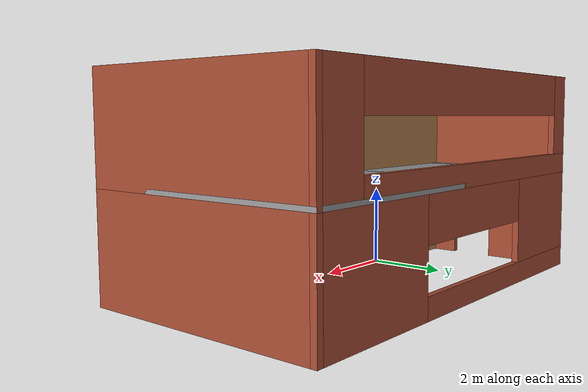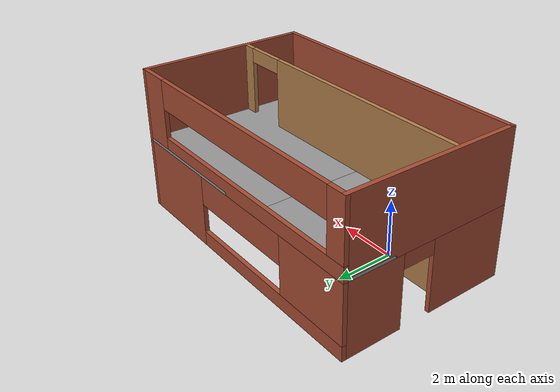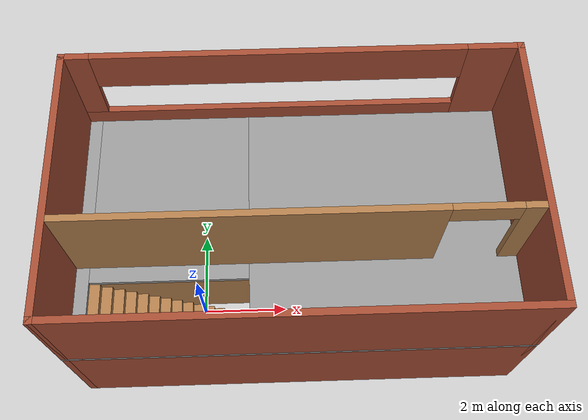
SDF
<?xml version='1.0'?>
<sdf version='1.6'>
  <model name='2storytexure'>
    <pose frame=''>2.285 1.175 0 0 -0 0</pose>
    <link name='Floor_0'>
      <pose frame=''>0 0 2.5 0 -0 0</pose>
      <visual name='Floor_0_Visual_0'>
        <pose frame=''>-4.7806 0 0.05 0 -0 0</pose>
        <geometry>
          <box>
            <size>0.438792 6 0.1</size>
          </box>
        </geometry>
        <material>
          <script>
            <uri>file://media/materials/scripts/gazebo.material</uri>
            <name>Gazebo/Grey</name>
          </script>
          <ambient>1 1 1 1</ambient>
        </material>
        <meta>
          <layer>1</layer>
        </meta>
      </visual>
      <collision name='Floor_0_Collision_0'>
        <geometry>
          <box>
            <size>0.438792 6 0.1</size>
          </box>
        </geometry>
        <pose frame=''>-4.7806 0 0.05 0 -0 0</pose>
      </collision>
      <visual name='Floor_0_Visual_1'>
        <pose frame=''>0.219396 -2.6591 0.05 0 -0 0</pose>
        <geometry>
          <box>
            <size>9.56121 0.681807 0.1</size>
          </box>
        </geometry>
        <material>
          <script>
            <uri>file://media/materials/scripts/gazebo.material</uri>
            <name>Gazebo/Grey</name>
          </script>
          <ambient>1 1 1 1</ambient>
        </material>
        <meta>
          <layer>1</layer>
        </meta>
      </visual>
      <collision name='Floor_0_Collision_1'>
        <geometry>
          <box>
            <size>9.56121 0.681807 0.1</size>
          </box>
        </geometry>
        <pose frame=''>0.219396 -2.6591 0.05 0 -0 0</pose>
      </collision>
      <visual name='Floor_0_Visual_2'>
        <pose frame=''>1.9694 0.340904 0.05 0 -0 0</pose>
        <geometry>
          <box>
            <size>6.06121 5.31819 0.1</size>
          </box>
        </geometry>
        <material>
          <script>
            <uri>file://media/materials/scripts/gazebo.material</uri>
            <name>Gazebo/Grey</name>
          </script>
          <ambient>1 1 1 1</ambient>
        </material>
        <meta>
          <layer>1</layer>
        </meta>
      </visual>
      <collision name='Floor_0_Collision_2'>
        <geometry>
          <box>
            <size>6.06121 5.31819 0.1</size>
          </box>
        </geometry>
        <pose frame=''>1.9694 0.340904 0.05 0 -0 0</pose>
      </collision>
      <visual name='Floor_0_Visual_3'>
        <pose frame=''>-2.81121 0.840904 0.05 0 -0 0</pose>
        <geometry>
          <box>
            <size>3.5 4.31819 0.1</size>
          </box>
        </geometry>
        <material>
          <script>
            <uri>file://media/materials/scripts/gazebo.material</uri>
            <name>Gazebo/Grey</name>
          </script>
          <ambient>1 1 1 1</ambient>
        </material>
        <meta>
          <layer>1</layer>
        </meta>
      </visual>
      <collision name='Floor_0_Collision_3'>
        <geometry>
          <box>
            <size>3.5 4.31819 0.1</size>
          </box>
        </geometry>
        <pose frame=''>-2.81121 0.840904 0.05 0 -0 0</pose>
      </collision>
    </link>
    <link name='Stairs_0'>
      <visual name='Stairs_0_Visual_0'>
        <pose frame=''>-1.17787 -1.81819 0.083333 0 -0 -1.5708</pose>
        <geometry>
          <box>
            <size>1 0.233333 0.166667</size>
          </box>
        </geometry>
        <material>
          <script>
            <uri>file://media/materials/scripts/gazebo.material</uri>
            <name>Gazebo/Wood</name>
          </script>
          <ambient>1 1 1 1</ambient>
        </material>
        <meta>
          <layer>0</layer>
        </meta>
      </visual>
      <collision name='Stairs_0_Collision_0'>
        <geometry>
          <box>
            <size>1 0.233333 0.166667</size>
          </box>
        </geometry>
        <pose frame=''>-1.17787 -1.81819 0.083333 0 -0 -1.5708</pose>
      </collision>
      <visual name='Stairs_0_Visual_1'>
        <pose frame=''>-1.41121 -1.81819 0.25 0 -0 -1.5708</pose>
        <geometry>
          <box>
            <size>1 0.233333 0.166667</size>
          </box>
        </geometry>
        <material>
          <script>
            <uri>file://media/materials/scripts/gazebo.material</uri>
            <name>Gazebo/Wood</name>
          </script>
          <ambient>1 1 1 1</ambient>
        </material>
        <meta>
          <layer>0</layer>
        </meta>
      </visual>
      <collision name='Stairs_0_Collision_1'>
        <geometry>
          <box>
            <size>1 0.233333 0.166667</size>
          </box>
        </geometry>
        <pose frame=''>-1.41121 -1.81819 0.25 0 -0 -1.5708</pose>
      </collision>
      <visual name='Stairs_0_Visual_2'>
        <pose frame=''>-1.64454 -1.81819 0.416667 0 -0 -1.5708</pose>
        <geometry>
          <box>
            <size>1 0.233333 0.166667</size>
          </box>
        </geometry>
        <material>
          <script>
            <uri>file://media/materials/scripts/gazebo.material</uri>
            <name>Gazebo/Wood</name>
          </script>
          <ambient>1 1 1 1</ambient>
        </material>
        <meta>
          <layer>0</layer>
        </meta>
      </visual>
      <collision name='Stairs_0_Collision_2'>
        <geometry>
          <box>
            <size>1 0.233333 0.166667</size>
          </box>
        </geometry>
        <pose frame=''>-1.64454 -1.81819 0.416667 0 -0 -1.5708</pose>
      </collision>
      <visual name='Stairs_0_Visual_3'>
        <pose frame=''>-1.87787 -1.81819 0.583333 0 -0 -1.5708</pose>
        <geometry>
          <box>
            <size>1 0.233333 0.166667</size>
          </box>
        </geometry>
        <material>
          <script>
            <uri>file://media/materials/scripts/gazebo.material</uri>
            <name>Gazebo/Wood</name>
          </script>
          <ambient>1 1 1 1</ambient>
        </material>
        <meta>
          <layer>0</layer>
        </meta>
      </visual>
      <collision name='Stairs_0_Collision_3'>
        <geometry>
          <box>
            <size>1 0.233333 0.166667</size>
          </box>
        </geometry>
        <pose frame=''>-1.87787 -1.81819 0.583333 0 -0 -1.5708</pose>
      </collision>
      <visual name='Stairs_0_Visual_4'>
        <pose frame=''>-2.11121 -1.81819 0.75 0 -0 -1.5708</pose>
        <geometry>
          <box>
            <size>1 0.233333 0.166667</size>
          </box>
        </geometry>
        <material>
          <script>
            <uri>file://media/materials/scripts/gazebo.material</uri>
            <name>Gazebo/Wood</name>
          </script>
          <ambient>1 1 1 1</ambient>
        </material>
        <meta>
          <layer>0</layer>
        </meta>
      </visual>
      <collision name='Stairs_0_Collision_4'>
        <geometry>
          <box>
            <size>1 0.233333 0.166667</size>
          </box>
        </geometry>
        <pose frame=''>-2.11121 -1.81819 0.75 0 -0 -1.5708</pose>
      </collision>
      <visual name='Stairs_0_Visual_5'>
        <pose frame=''>-2.34454 -1.81819 0.916667 0 -0 -1.5708</pose>
        <geometry>
          <box>
            <size>1 0.233333 0.166667</size>
          </box>
        </geometry>
        <material>
          <script>
            <uri>file://media/materials/scripts/gazebo.material</uri>
            <name>Gazebo/Wood</name>
          </script>
          <ambient>1 1 1 1</ambient>
        </material>
        <meta>
          <layer>0</layer>
        </meta>
      </visual>
      <collision name='Stairs_0_Collision_5'>
        <geometry>
          <box>
            <size>1 0.233333 0.166667</size>
          </box>
        </geometry>
        <pose frame=''>-2.34454 -1.81819 0.916667 0 -0 -1.5708</pose>
      </collision>
      <visual name='Stairs_0_Visual_6'>
        <pose frame=''>-2.57787 -1.81819 1.08333 0 -0 -1.5708</pose>
        <geometry>
          <box>
            <size>1 0.233333 0.166667</size>
          </box>
        </geometry>
        <material>
          <script>
            <uri>file://media/materials/scripts/gazebo.material</uri>
            <name>Gazebo/Wood</name>
          </script>
          <ambient>1 1 1 1</ambient>
        </material>
        <meta>
          <layer>0</layer>
        </meta>
      </visual>
      <collision name='Stairs_0_Collision_6'>
        <geometry>
          <box>
            <size>1 0.233333 0.166667</size>
          </box>
        </geometry>
        <pose frame=''>-2.57787 -1.81819 1.08333 0 -0 -1.5708</pose>
      </collision>
      <visual name='Stairs_0_Visual_7'>
        <pose frame=''>-2.81121 -1.81819 1.25 0 -0 -1.5708</pose>
        <geometry>
          <box>
            <size>1 0.233333 0.166667</size>
          </box>
        </geometry>
        <material>
          <script>
            <uri>file://media/materials/scripts/gazebo.material</uri>
            <name>Gazebo/Wood</name>
          </script>
          <ambient>1 1 1 1</ambient>
        </material>
        <meta>
          <layer>0</layer>
        </meta>
      </visual>
      <collision name='Stairs_0_Collision_7'>
        <geometry>
          <box>
            <size>1 0.233333 0.166667</size>
          </box>
        </geometry>
        <pose frame=''>-2.81121 -1.81819 1.25 0 -0 -1.5708</pose>
      </collision>
      <visual name='Stairs_0_Visual_8'>
        <pose frame=''>-3.04454 -1.81819 1.41667 0 -0 -1.5708</pose>
        <geometry>
          <box>
            <size>1 0.233333 0.166667</size>
          </box>
        </geometry>
        <material>
          <script>
            <uri>file://media/materials/scripts/gazebo.material</uri>
            <name>Gazebo/Wood</name>
          </script>
          <ambient>1 1 1 1</ambient>
        </material>
        <meta>
          <layer>0</layer>
        </meta>
      </visual>
      <collision name='Stairs_0_Collision_8'>
        <geometry>
          <box>
            <size>1 0.233333 0.166667</size>
          </box>
        </geometry>
        <pose frame=''>-3.04454 -1.81819 1.41667 0 -0 -1.5708</pose>
      </collision>
      <visual name='Stairs_0_Visual_9'>
        <pose frame=''>-3.27787 -1.81819 1.58333 0 -0 -1.5708</pose>
        <geometry>
          <box>
            <size>1 0.233333 0.166667</size>
          </box>
        </geometry>
        <material>
          <script>
            <uri>file://media/materials/scripts/gazebo.material</uri>
            <name>Gazebo/Wood</name>
          </script>
          <ambient>1 1 1 1</ambient>
        </material>
        <meta>
          <layer>0</layer>
        </meta>
      </visual>
      <collision name='Stairs_0_Collision_9'>
        <geometry>
          <box>
            <size>1 0.233333 0.166667</size>
          </box>
        </geometry>
        <pose frame=''>-3.27787 -1.81819 1.58333 0 -0 -1.5708</pose>
      </collision>
      <visual name='Stairs_0_Visual_10'>
        <pose frame=''>-3.51121 -1.81819 1.75 0 -0 -1.5708</pose>
        <geometry>
          <box>
            <size>1 0.233333 0.166667</size>
          </box>
        </geometry>
        <material>
          <script>
            <uri>file://media/materials/scripts/gazebo.material</uri>
            <name>Gazebo/Wood</name>
          </script>
          <ambient>1 1 1 1</ambient>
        </material>
        <meta>
          <layer>0</layer>
        </meta>
      </visual>
      <collision name='Stairs_0_Collision_10'>
        <geometry>
          <box>
            <size>1 0.233333 0.166667</size>
          </box>
        </geometry>
        <pose frame=''>-3.51121 -1.81819 1.75 0 -0 -1.5708</pose>
      </collision>
      <visual name='Stairs_0_Visual_11'>
        <pose frame=''>-3.74454 -1.81819 1.91667 0 -0 -1.5708</pose>
        <geometry>
          <box>
            <size>1 0.233333 0.166667</size>
          </box>
        </geometry>
        <material>
          <script>
            <uri>file://media/materials/scripts/gazebo.material</uri>
            <name>Gazebo/Wood</name>
          </script>
          <ambient>1 1 1 1</ambient>
        </material>
        <meta>
          <layer>0</layer>
        </meta>
      </visual>
      <collision name='Stairs_0_Collision_11'>
        <geometry>
          <box>
            <size>1 0.233333 0.166667</size>
          </box>
        </geometry>
        <pose frame=''>-3.74454 -1.81819 1.91667 0 -0 -1.5708</pose>
      </collision>
      <visual name='Stairs_0_Visual_12'>
        <pose frame=''>-3.97787 -1.81819 2.08333 0 -0 -1.5708</pose>
        <geometry>
          <box>
            <size>1 0.233333 0.166667</size>
          </box>
        </geometry>
        <material>
          <script>
            <uri>file://media/materials/scripts/gazebo.material</uri>
            <name>Gazebo/Wood</name>
          </script>
          <ambient>1 1 1 1</ambient>
        </material>
        <meta>
          <layer>0</layer>
        </meta>
      </visual>
      <collision name='Stairs_0_Collision_12'>
        <geometry>
          <box>
            <size>1 0.233333 0.166667</size>
          </box>
        </geometry>
        <pose frame=''>-3.97787 -1.81819 2.08333 0 -0 -1.5708</pose>
      </collision>
      <visual name='Stairs_0_Visual_13'>
        <pose frame=''>-4.21121 -1.81819 2.25 0 -0 -1.5708</pose>
        <geometry>
          <box>
            <size>1 0.233333 0.166667</size>
          </box>
        </geometry>
        <material>
          <script>
            <uri>file://media/materials/scripts/gazebo.material</uri>
            <name>Gazebo/Wood</name>
          </script>
          <ambient>1 1 1 1</ambient>
        </material>
        <meta>
          <layer>0</layer>
        </meta>
      </visual>
      <collision name='Stairs_0_Collision_13'>
        <geometry>
          <box>
            <size>1 0.233333 0.166667</size>
          </box>
        </geometry>
        <pose frame=''>-4.21121 -1.81819 2.25 0 -0 -1.5708</pose>
      </collision>
      <visual name='Stairs_0_Visual_14'>
        <pose frame=''>-4.44454 -1.81819 2.41667 0 -0 -1.5708</pose>
        <geometry>
          <box>
            <size>1 0.233333 0.166667</size>
          </box>
        </geometry>
        <material>
          <script>
            <uri>file://media/materials/scripts/gazebo.material</uri>
            <name>Gazebo/Wood</name>
          </script>
          <ambient>1 1 1 1</ambient>
        </material>
        <meta>
          <layer>0</layer>
        </meta>
      </visual>
      <collision name='Stairs_0_Collision_14'>
        <geometry>
          <box>
            <size>1 0.233333 0.166667</size>
          </box>
        </geometry>
        <pose frame=''>-4.44454 -1.81819 2.41667 0 -0 -1.5708</pose>
      </collision>
    </link>
    <link name='Wall_0'>
      <collision name='Wall_0_Collision'>
        <geometry>
          <box>
            <size>10 0.15 2.5</size>
          </box>
        </geometry>
        <pose frame=''>0 0 1.25 0 -0 0</pose>
      </collision>
      <visual name='Wall_0_Visual'>
        <pose frame=''>0 0 1.25 0 -0 0</pose>
        <geometry>
          <box>
            <size>10 0.15 2.5</size>
          </box>
        </geometry>
        <material>
          <script>
            <uri>file://media/materials/scripts/gazebo.material</uri>
            <name>Gazebo/Bricks</name>
          </script>
          <ambient>1 1 1 1</ambient>
        </material>
        <meta>
          <layer>0</layer>
        </meta>
      </visual>
      <pose frame=''>0 -2.925 0 0 -0 0</pose>
    </link>
    <link name='Wall_1'>
      <collision name='Wall_1_Collision'>
        <geometry>
          <box>
            <size>6 0.15 2.5</size>
          </box>
        </geometry>
        <pose frame=''>0 0 1.25 0 -0 0</pose>
      </collision>
      <visual name='Wall_1_Visual'>
        <pose frame=''>0 0 1.25 0 -0 0</pose>
        <geometry>
          <box>
            <size>6 0.15 2.5</size>
          </box>
        </geometry>
        <material>
          <script>
            <uri>file://media/materials/scripts/gazebo.material</uri>
            <name>Gazebo/Bricks</name>
          </script>
          <ambient>1 1 1 1</ambient>
        </material>
        <meta>
          <layer>0</layer>
        </meta>
      </visual>
      <pose frame=''>4.925 0 0 0 -0 1.5708</pose>
    </link>
    <link name='Wall_10'>
      <pose frame=''>0 2.925 2.5 0 -0 3.14159</pose>
      <visual name='Wall_10_Visual_0'>
        <pose frame=''>-4.39109 0 1.25 0 -0 0</pose>
        <geometry>
          <box>
            <size>1.21783 0.15 2.5</size>
          </box>
        </geometry>
        <material>
          <script>
            <uri>file://media/materials/scripts/gazebo.material</uri>
            <name>Gazebo/Bricks</name>
          </script>
          <ambient>1 1 1 1</ambient>
        </material>
        <meta>
          <layer>1</layer>
        </meta>
      </visual>
      <collision name='Wall_10_Collision_0'>
        <geometry>
          <box>
            <size>1.21783 0.15 2.5</size>
          </box>
        </geometry>
        <pose frame=''>-4.39109 0 1.25 0 -0 0</pose>
      </collision>
      <visual name='Wall_10_Visual_1'>
        <pose frame=''>0.608915 0 0.25 0 -0 0</pose>
        <geometry>
          <box>
            <size>8.78217 0.15 0.5</size>
          </box>
        </geometry>
        <material>
          <script>
            <uri>file://media/materials/scripts/gazebo.material</uri>
            <name>Gazebo/Bricks</name>
          </script>
          <ambient>1 1 1 1</ambient>
        </material>
        <meta>
          <layer>1</layer>
        </meta>
      </visual>
      <collision name='Wall_10_Collision_1'>
        <geometry>
          <box>
            <size>8.78217 0.15 0.5</size>
          </box>
        </geometry>
        <pose frame=''>0.608915 0 0.25 0 -0 0</pose>
      </collision>
      <visual name='Wall_10_Visual_2'>
        <pose frame=''>4.66641 0 1.5 0 -0 0</pose>
        <geometry>
          <box>
            <size>0.66717 0.15 2</size>
          </box>
        </geometry>
        <material>
          <script>
            <uri>file://media/materials/scripts/gazebo.material</uri>
            <name>Gazebo/Bricks</name>
          </script>
          <ambient>1 1 1 1</ambient>
        </material>
        <meta>
          <layer>1</layer>
        </meta>
      </visual>
      <collision name='Wall_10_Collision_2'>
        <geometry>
          <box>
            <size>0.66717 0.15 2</size>
          </box>
        </geometry>
        <pose frame=''>4.66641 0 1.5 0 -0 0</pose>
      </collision>
      <visual name='Wall_10_Visual_3'>
        <pose frame=''>0.27533 0 2 0 -0 0</pose>
        <geometry>
          <box>
            <size>8.115 0.15 1</size>
          </box>
        </geometry>
        <material>
          <script>
            <uri>file://media/materials/scripts/gazebo.material</uri>
            <name>Gazebo/Bricks</name>
          </script>
          <ambient>1 1 1 1</ambient>
        </material>
        <meta>
          <layer>1</layer>
        </meta>
      </visual>
      <collision name='Wall_10_Collision_3'>
        <geometry>
          <box>
            <size>8.115 0.15 1</size>
          </box>
        </geometry>
        <pose frame=''>0.27533 0 2 0 -0 0</pose>
      </collision>
    </link>
    <link name='Wall_11'>
      <collision name='Wall_11_Collision'>
        <geometry>
          <box>
            <size>6 0.15 2.5</size>
          </box>
        </geometry>
        <pose frame=''>0 0 1.25 0 -0 0</pose>
      </collision>
      <visual name='Wall_11_Visual'>
        <pose frame=''>0 0 1.25 0 -0 0</pose>
        <geometry>
          <box>
            <size>6 0.15 2.5</size>
          </box>
        </geometry>
        <material>
          <script>
            <uri>file://media/materials/scripts/gazebo.material</uri>
            <name>Gazebo/Bricks</name>
          </script>
          <ambient>1 1 1 1</ambient>
        </material>
        <meta>
          <layer>1</layer>
        </meta>
      </visual>
      <pose frame=''>-4.925 0 2.5 0 -0 -1.5708</pose>
    </link>
    <link name='Wall_12'>
      <pose frame=''>0.008566 -0.889608 2.5 0 -0 0</pose>
      <visual name='Wall_12_Visual_0'>
        <pose frame=''>-0.941376 0 1.25 0 -0 0</pose>
        <geometry>
          <box>
            <size>7.86725 0.15 2.5</size>
          </box>
        </geometry>
        <material>
          <script>
            <uri>file://media/materials/scripts/gazebo.material</uri>
            <name>Gazebo/Wood</name>
          </script>
          <ambient>1 1 1 1</ambient>
        </material>
        <meta>
          <layer>1</layer>
        </meta>
      </visual>
      <collision name='Wall_12_Collision_0'>
        <geometry>
          <box>
            <size>7.86725 0.15 2.5</size>
          </box>
        </geometry>
        <pose frame=''>-0.941376 0 1.25 0 -0 0</pose>
      </collision>
      <visual name='Wall_12_Visual_1'>
        <pose frame=''>4.64217 0 1.25 0 -0 0</pose>
        <geometry>
          <box>
            <size>0.465655 0.15 2.5</size>
          </box>
        </geometry>
        <material>
          <script>
            <uri>file://media/materials/scripts/gazebo.material</uri>
            <name>Gazebo/Wood</name>
          </script>
          <ambient>1 1 1 1</ambient>
        </material>
        <meta>
          <layer>1</layer>
        </meta>
      </visual>
      <collision name='Wall_12_Collision_1'>
        <geometry>
          <box>
            <size>0.465655 0.15 2.5</size>
          </box>
        </geometry>
        <pose frame=''>4.64217 0 1.25 0 -0 0</pose>
      </collision>
      <visual name='Wall_12_Visual_2'>
        <pose frame=''>3.7008 0 2.25 0 -0 0</pose>
        <geometry>
          <box>
            <size>1.4171 0.15 0.5</size>
          </box>
        </geometry>
        <material>
          <script>
            <uri>file://media/materials/scripts/gazebo.material</uri>
            <name>Gazebo/Wood</name>
          </script>
          <ambient>1 1 1 1</ambient>
        </material>
        <meta>
          <layer>1</layer>
        </meta>
      </visual>
      <collision name='Wall_12_Collision_2'>
        <geometry>
          <box>
            <size>1.4171 0.15 0.5</size>
          </box>
        </geometry>
        <pose frame=''>3.7008 0 2.25 0 -0 0</pose>
      </collision>
    </link>
    <link name='Wall_2'>
      <pose frame=''>0 2.925 0 0 -0 3.14159</pose>
      <visual name='Wall_2_Visual_0'>
        <pose frame=''>-3.365 0 1.25 0 -0 0</pose>
        <geometry>
          <box>
            <size>3.27 0.15 2.5</size>
          </box>
        </geometry>
        <material>
          <script>
            <uri>file://media/materials/scripts/gazebo.material</uri>
            <name>Gazebo/Bricks</name>
          </script>
          <ambient>1 1 1 1</ambient>
        </material>
        <meta>
          <layer>0</layer>
        </meta>
      </visual>
      <collision name='Wall_2_Collision_0'>
        <geometry>
          <box>
            <size>3.27 0.15 2.5</size>
          </box>
        </geometry>
        <pose frame=''>-3.365 0 1.25 0 -0 0</pose>
      </collision>
      <visual name='Wall_2_Visual_1'>
        <pose frame=''>1.635 0 0.25 0 -0 0</pose>
        <geometry>
          <box>
            <size>6.73 0.15 0.5</size>
          </box>
        </geometry>
        <material>
          <script>
            <uri>file://media/materials/scripts/gazebo.material</uri>
            <name>Gazebo/Bricks</name>
          </script>
          <ambient>1 1 1 1</ambient>
        </material>
        <meta>
          <layer>0</layer>
        </meta>
      </visual>
      <collision name='Wall_2_Collision_1'>
        <geometry>
          <box>
            <size>6.73 0.15 0.5</size>
          </box>
        </geometry>
        <pose frame=''>1.635 0 0.25 0 -0 0</pose>
      </collision>
      <visual name='Wall_2_Visual_2'>
        <pose frame=''>3.65 0 1.5 0 -0 0</pose>
        <geometry>
          <box>
            <size>2.7 0.15 2</size>
          </box>
        </geometry>
        <material>
          <script>
            <uri>file://media/materials/scripts/gazebo.material</uri>
            <name>Gazebo/Bricks</name>
          </script>
          <ambient>1 1 1 1</ambient>
        </material>
        <meta>
          <layer>0</layer>
        </meta>
      </visual>
      <collision name='Wall_2_Collision_2'>
        <geometry>
          <box>
            <size>2.7 0.15 2</size>
          </box>
        </geometry>
        <pose frame=''>3.65 0 1.5 0 -0 0</pose>
      </collision>
      <visual name='Wall_2_Visual_3'>
        <pose frame=''>0.285 0 2 0 -0 0</pose>
        <geometry>
          <box>
            <size>4.03 0.15 1</size>
          </box>
        </geometry>
        <material>
          <script>
            <uri>file://media/materials/scripts/gazebo.material</uri>
            <name>Gazebo/Bricks</name>
          </script>
          <ambient>1 1 1 1</ambient>
        </material>
        <meta>
          <layer>0</layer>
        </meta>
      </visual>
      <collision name='Wall_2_Collision_3'>
        <geometry>
          <box>
            <size>4.03 0.15 1</size>
          </box>
        </geometry>
        <pose frame=''>0.285 0 2 0 -0 0</pose>
      </collision>
    </link>
    <link name='Wall_3'>
      <pose frame=''>-4.925 0 0 0 -0 -1.5708</pose>
      <visual name='Wall_3_Visual_0'>
        <pose frame=''>-1.96738 0 1.25 0 -0 0</pose>
        <geometry>
          <box>
            <size>2.06523 0.15 2.5</size>
          </box>
        </geometry>
        <material>
          <script>
            <uri>file://media/materials/scripts/gazebo.material</uri>
            <name>Gazebo/Bricks</name>
          </script>
          <ambient>1 1 1 1</ambient>
        </material>
        <meta>
          <layer>0</layer>
        </meta>
      </visual>
      <collision name='Wall_3_Collision_0'>
        <geometry>
          <box>
            <size>2.06523 0.15 2.5</size>
          </box>
        </geometry>
        <pose frame=''>-1.96738 0 1.25 0 -0 0</pose>
      </collision>
      <visual name='Wall_3_Visual_1'>
        <pose frame=''>1.58762 0 1.25 0 -0 0</pose>
        <geometry>
          <box>
            <size>2.82477 0.15 2.5</size>
          </box>
        </geometry>
        <material>
          <script>
            <uri>file://media/materials/scripts/gazebo.material</uri>
            <name>Gazebo/Bricks</name>
          </script>
          <ambient>1 1 1 1</ambient>
        </material>
        <meta>
          <layer>0</layer>
        </meta>
      </visual>
      <collision name='Wall_3_Collision_1'>
        <geometry>
          <box>
            <size>2.82477 0.15 2.5</size>
          </box>
        </geometry>
        <pose frame=''>1.58762 0 1.25 0 -0 0</pose>
      </collision>
      <visual name='Wall_3_Visual_2'>
        <pose frame=''>-0.379767 0 2.25 0 -0 0</pose>
        <geometry>
          <box>
            <size>1.11 0.15 0.5</size>
          </box>
        </geometry>
        <material>
          <script>
            <uri>file://media/materials/scripts/gazebo.material</uri>
            <name>Gazebo/Bricks</name>
          </script>
          <ambient>1 1 1 1</ambient>
        </material>
        <meta>
          <layer>0</layer>
        </meta>
      </visual>
      <collision name='Wall_3_Collision_2'>
        <geometry>
          <box>
            <size>1.11 0.15 0.5</size>
          </box>
        </geometry>
        <pose frame=''>-0.379767 0 2.25 0 -0 0</pose>
      </collision>
    </link>
    <link name='Wall_6'>
      <pose frame=''>0.008566 -0.889608 0 0 -0 0</pose>
      <visual name='Wall_6_Visual_0'>
        <pose frame=''>-0.806308 0 1.25 0 -0 0</pose>
        <geometry>
          <box>
            <size>8.13738 0.15 2.5</size>
          </box>
        </geometry>
        <material>
          <script>
            <uri>file://media/materials/scripts/gazebo.material</uri>
            <name>Gazebo/Wood</name>
          </script>
          <ambient>1 1 1 1</ambient>
        </material>
        <meta>
          <layer>0</layer>
        </meta>
      </visual>
      <collision name='Wall_6_Collision_0'>
        <geometry>
          <box>
            <size>8.13738 0.15 2.5</size>
          </box>
        </geometry>
        <pose frame=''>-0.806308 0 1.25 0 -0 0</pose>
      </collision>
      <visual name='Wall_6_Visual_1'>
        <pose frame=''>4.63276 0 1.25 0 -0 0</pose>
        <geometry>
          <box>
            <size>0.484484 0.15 2.5</size>
          </box>
        </geometry>
        <material>
          <script>
            <uri>file://media/materials/scripts/gazebo.material</uri>
            <name>Gazebo/Wood</name>
          </script>
          <ambient>1 1 1 1</ambient>
        </material>
        <meta>
          <layer>0</layer>
        </meta>
      </visual>
      <collision name='Wall_6_Collision_1'>
        <geometry>
          <box>
            <size>0.484484 0.15 2.5</size>
          </box>
        </geometry>
        <pose frame=''>4.63276 0 1.25 0 -0 0</pose>
      </collision>
      <visual name='Wall_6_Visual_2'>
        <pose frame=''>3.82645 0 2.25 0 -0 0</pose>
        <geometry>
          <box>
            <size>1.12813 0.15 0.5</size>
          </box>
        </geometry>
        <material>
          <script>
            <uri>file://media/materials/scripts/gazebo.material</uri>
            <name>Gazebo/Wood</name>
          </script>
          <ambient>1 1 1 1</ambient>
        </material>
        <meta>
          <layer>0</layer>
        </meta>
      </visual>
      <collision name='Wall_6_Collision_2'>
        <geometry>
          <box>
            <size>1.12813 0.15 0.5</size>
          </box>
        </geometry>
        <pose frame=''>3.82645 0 2.25 0 -0 0</pose>
      </collision>
    </link>
    <link name='Wall_8'>
      <collision name='Wall_8_Collision'>
        <geometry>
          <box>
            <size>10 0.15 2.5</size>
          </box>
        </geometry>
        <pose frame=''>0 0 1.25 0 -0 0</pose>
      </collision>
      <visual name='Wall_8_Visual'>
        <pose frame=''>0 0 1.25 0 -0 0</pose>
        <geometry>
          <box>
            <size>10 0.15 2.5</size>
          </box>
        </geometry>
        <material>
          <script>
            <uri>file://media/materials/scripts/gazebo.material</uri>
            <name>Gazebo/Bricks</name>
          </script>
          <ambient>1 1 1 1</ambient>
        </material>
        <meta>
          <layer>1</layer>
        </meta>
      </visual>
      <pose frame=''>0 -2.925 2.5 0 -0 0</pose>
    </link>
    <link name='Wall_9'>
      <collision name='Wall_9_Collision'>
        <geometry>
          <box>
            <size>6 0.15 2.5</size>
          </box>
        </geometry>
        <pose frame=''>0 0 1.25 0 -0 0</pose>
      </collision>
      <visual name='Wall_9_Visual'>
        <pose frame=''>0 0 1.25 0 -0 0</pose>
        <geometry>
          <box>
            <size>6 0.15 2.5</size>
          </box>
        </geometry>
        <material>
          <script>
            <uri>file://media/materials/scripts/gazebo.material</uri>
            <name>Gazebo/Bricks</name>
          </script>
          <ambient>1 1 1 1</ambient>
        </material>
        <meta>
          <layer>1</layer>
        </meta>
      </visual>
      <pose frame=''>4.925 0 2.5 0 -0 1.5708</pose>
    </link>
    <static>1</static>
  </model>
</sdf>
